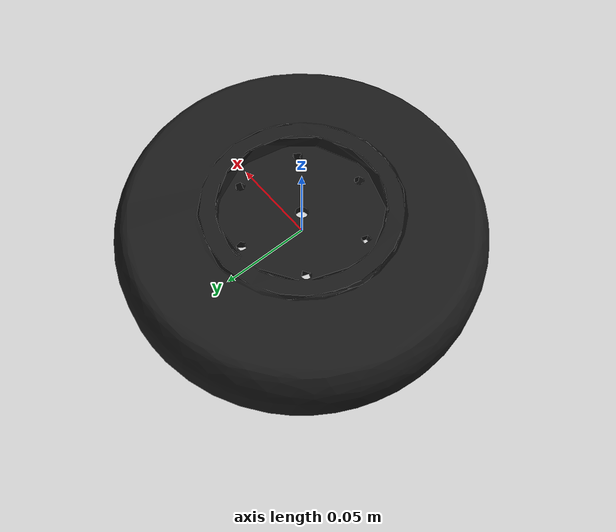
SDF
<?xml version="1.0"?>
<sdf version='1.6'>
<model name='CLOIPorterWheel'>
  <link name='link'>
    <inertial>
      <mass>1.5</mass>
      <inertia>
        <ixx>0.00216667</ixx>
        <ixy>0</ixy>
        <ixz>0</ixz>
        <iyy>0.00216667</iyy>
        <iyz>0</iyz>
        <izz>0.00400000</izz>
      </inertia>
    </inertial>

    <gravity>1</gravity>
    <self_collide>0</self_collide>
    <kinematic>0</kinematic>
    <enable_wind>0</enable_wind>

    <visual name='visual'>
      <geometry>
        <mesh>
          <uri>model://CLOi_porter_wheel/meshes/porter_wheel.stl</uri>
        </mesh>
      </geometry>
      <material>
        <lighting>1</lighting>
        <ambient>0.5 0.5 0.5 1</ambient>
        <diffuse>0.1 0.1 0.1 1</diffuse>
        <specular>0.8 0.8 0.8 1</specular>
        <emissive>0.02 0.02 0.02 1</emissive>
      </material>
      <cast_shadows>0</cast_shadows>
      <transparency>0</transparency>
    </visual>

    <collision name='collision_wheel'>
      <laser_retro>0</laser_retro>
      <max_contacts>2</max_contacts>
      <geometry>
        <cylinder>
          <radius>0.1</radius>
          <length>0.05</length>
        </cylinder>
      </geometry>
      <surface>
        <friction>
          <ode>
            <mu>0.99</mu>
            <fdir1>0 0 1</fdir1>
          </ode>
        </friction>
        <bounce>
          <restitution_coefficient>0.8</restitution_coefficient>
        </bounce>
        <contact>
          <poissons_ratio>0.49</poissons_ratio>
          <elastic_modulus>0.46</elastic_modulus>
          <ode>
            <max_vel>0.01</max_vel>
            <min_depth>0.0001</min_depth>
            <kp>3e6</kp>
            <kd>1.00000</kd>
            <soft_cfm>0.000010</soft_cfm>
            <soft_erp>0.250000</soft_erp>
          </ode>
        </contact>
      </surface>
    </collision>
  </link>
</model>
</sdf>
